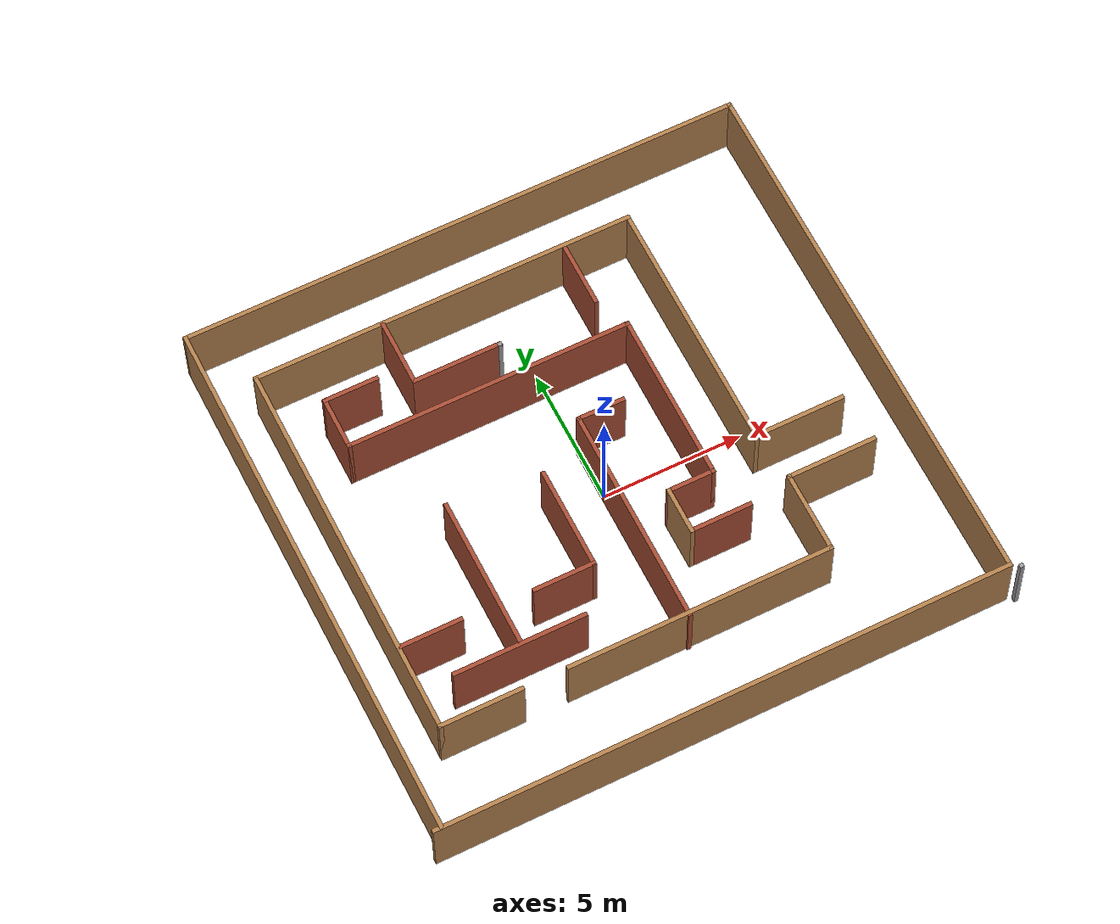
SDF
<?xml version='1.0'?>
<sdf version='1.7'>
  <model name='maze'>
    <pose>-0.132781 0.488445 0 0 -0 0</pose>
    <link name='Wall_101'>
      <collision name='Wall_101_Collision'>
        <geometry>
          <box>
            <size>1.75 0.15 2.5</size>
          </box>
        </geometry>
        <pose>0 0 1.25 0 -0 0</pose>
      </collision>
      <visual name='Wall_101_Visual'>
        <pose>0 0 1.25 0 -0 0</pose>
        <geometry>
          <box>
            <size>1.75 0.15 2.5</size>
          </box>
        </geometry>
        <material>
          <script>
            <uri>file://media/materials/scripts/gazebo.material</uri>
            <name>Gazebo/Bricks</name>
          </script>
          <ambient>1 1 1 1</ambient>
        </material>
        <meta>
          <layer>0</layer>
        </meta>
      </visual>
      <pose>2.31712 -2.33919 0 0 -0 3.14159</pose>
    </link>
    <link name='Wall_102'>
      <collision name='Wall_102_Collision'>
        <geometry>
          <box>
            <size>1.75 0.15 2.5</size>
          </box>
        </geometry>
        <pose>0 0 1.25 0 -0 0</pose>
      </collision>
      <visual name='Wall_102_Visual'>
        <pose>0 0 1.25 0 -0 0</pose>
        <geometry>
          <box>
            <size>1.75 0.15 2.5</size>
          </box>
        </geometry>
        <material>
          <script>
            <uri>file://media/materials/scripts/gazebo.material</uri>
            <name>Gazebo/Wood</name>
          </script>
          <ambient>1 1 1 1</ambient>
        </material>
        <meta>
          <layer>0</layer>
        </meta>
      </visual>
      <pose>1.51712 -3.13919 0 0 -0 -1.5708</pose>
    </link>
    <link name='Wall_103'>
      <collision name='Wall_103_Collision'>
        <geometry>
          <box>
            <size>2.25 0.15 2.5</size>
          </box>
        </geometry>
        <pose>0 0 1.25 0 -0 0</pose>
      </collision>
      <visual name='Wall_103_Visual'>
        <pose>0 0 1.25 0 -0 0</pose>
        <geometry>
          <box>
            <size>2.25 0.15 2.5</size>
          </box>
        </geometry>
        <material>
          <script>
            <uri>file://media/materials/scripts/gazebo.material</uri>
            <name>Gazebo/Bricks</name>
          </script>
          <ambient>1 1 1 1</ambient>
        </material>
        <meta>
          <layer>0</layer>
        </meta>
      </visual>
      <pose>2.56712 -3.93919 0 0 -0 0</pose>
    </link>
    <link name='Wall_105'>
      <collision name='Wall_105_Collision'>
        <geometry>
          <box>
            <size>2.5 0.15 2.5</size>
          </box>
        </geometry>
        <pose>0 0 1.25 0 -0 0</pose>
      </collision>
      <visual name='Wall_105_Visual'>
        <pose>0 0 1.25 0 -0 0</pose>
        <geometry>
          <box>
            <size>2.5 0.15 2.5</size>
          </box>
        </geometry>
        <material>
          <script>
            <uri>file://media/materials/scripts/gazebo.material</uri>
            <name>Gazebo/Bricks</name>
          </script>
          <ambient>1 1 1 1</ambient>
        </material>
        <meta>
          <layer>0</layer>
        </meta>
      </visual>
      <pose>2.56463 6.1754 0 0 -0 -1.5708</pose>
    </link>
    <link name='Wall_108'>
      <collision name='Wall_108_Collision'>
        <geometry>
          <box>
            <size>2 0.15 2.5</size>
          </box>
        </geometry>
        <pose>0 0 1.25 0 -0 0</pose>
      </collision>
      <visual name='Wall_108_Visual'>
        <pose>0 0 1.25 0 -0 0</pose>
        <geometry>
          <box>
            <size>2 0.15 2.5</size>
          </box>
        </geometry>
        <material>
          <script>
            <uri>file://media/materials/scripts/gazebo.material</uri>
            <name>Gazebo/Bricks</name>
          </script>
          <ambient>1 1 1 1</ambient>
        </material>
        <meta>
          <layer>0</layer>
        </meta>
      </visual>
      <pose>-6.05788 5.61081 0 0 -0 0</pose>
    </link>
    <link name='Wall_110'>
      <collision name='Wall_110_Collision'>
        <geometry>
          <box>
            <size>2.5 0.15 2.5</size>
          </box>
        </geometry>
        <pose>0 0 1.25 0 -0 0</pose>
      </collision>
      <visual name='Wall_110_Visual'>
        <pose>0 0 1.25 0 -0 0</pose>
        <geometry>
          <box>
            <size>2.5 0.15 2.5</size>
          </box>
        </geometry>
        <material>
          <script>
            <uri>file://media/materials/scripts/gazebo.material</uri>
            <name>Gazebo/Bricks</name>
          </script>
          <ambient>1 1 1 1</ambient>
        </material>
        <meta>
          <layer>0</layer>
        </meta>
      </visual>
      <pose>-4.07008 6.13494 0 0 -0 -1.5708</pose>
    </link>
    <link name='Wall_111'>
      <collision name='Wall_111_Collision'>
        <geometry>
          <box>
            <size>3.25 0.15 2.5</size>
          </box>
        </geometry>
        <pose>0 0 1.25 0 -0 0</pose>
      </collision>
      <visual name='Wall_111_Visual'>
        <pose>0 0 1.25 0 -0 0</pose>
        <geometry>
          <box>
            <size>3.25 0.15 2.5</size>
          </box>
        </geometry>
        <material>
          <script>
            <uri>file://media/materials/scripts/gazebo.material</uri>
            <name>Gazebo/Bricks</name>
          </script>
          <ambient>1 1 1 1</ambient>
        </material>
        <meta>
          <layer>0</layer>
        </meta>
      </visual>
      <pose>-2.52008 4.95994 0 0 -0 0</pose>
    </link>
    <link name='Wall_112'>
      <collision name='Wall_112_Collision'>
        <geometry>
          <box>
            <size>0.15 0.15 2.5</size>
          </box>
        </geometry>
        <pose>0 0 1.25 0 -0 0</pose>
      </collision>
      <visual name='Wall_112_Visual'>
        <pose>0 0 1.25 0 -0 0</pose>
        <geometry>
          <box>
            <size>0.15 0.15 2.5</size>
          </box>
        </geometry>
        <material>
          <script>
            <uri>file://media/materials/scripts/gazebo.material</uri>
            <name>Gazebo/Grey</name>
          </script>
          <ambient>1 1 1 1</ambient>
        </material>
        <meta>
          <layer>0</layer>
        </meta>
      </visual>
      <pose>-0.970079 4.95994 0 0 -0 0</pose>
    </link>
    <link name='Wall_14'>
      <collision name='Wall_14_Collision'>
        <geometry>
          <box>
            <size>20.5 0.15 2.5</size>
          </box>
        </geometry>
        <pose>0 0 1.25 0 -0 0</pose>
      </collision>
      <visual name='Wall_14_Visual'>
        <pose>0 0 1.25 0 -0 0</pose>
        <geometry>
          <box>
            <size>20.5 0.15 2.5</size>
          </box>
        </geometry>
        <material>
          <script>
            <uri>file://media/materials/scripts/gazebo.material</uri>
            <name>Gazebo/Wood</name>
          </script>
          <ambient>1 1 1 1</ambient>
        </material>
        <meta>
          <layer>0</layer>
        </meta>
      </visual>
      <pose>-0.15378 -9.57856 0 0 -0 0</pose>
    </link>
    <link name='Wall_15'>
      <collision name='Wall_15_Collision'>
        <geometry>
          <box>
            <size>19.5 0.15 2.5</size>
          </box>
        </geometry>
        <pose>0 0 1.25 0 -0 0</pose>
      </collision>
      <visual name='Wall_15_Visual'>
        <pose>0 0 1.25 0 -0 0</pose>
        <geometry>
          <box>
            <size>19.5 0.15 2.5</size>
          </box>
        </geometry>
        <material>
          <script>
            <uri>file://media/materials/scripts/gazebo.material</uri>
            <name>Gazebo/Wood</name>
          </script>
          <ambient>1 1 1 1</ambient>
        </material>
        <meta>
          <layer>0</layer>
        </meta>
      </visual>
      <pose>10.0212 0.096444 0 0 -0 1.5708</pose>
    </link>
    <link name='Wall_16'>
      <collision name='Wall_16_Collision'>
        <geometry>
          <box>
            <size>20.25 0.15 2.5</size>
          </box>
        </geometry>
        <pose>0 0 1.25 0 -0 0</pose>
      </collision>
      <visual name='Wall_16_Visual'>
        <pose>0 0 1.25 0 -0 0</pose>
        <geometry>
          <box>
            <size>20.25 0.15 2.5</size>
          </box>
        </geometry>
        <material>
          <script>
            <uri>file://media/materials/scripts/gazebo.material</uri>
            <name>Gazebo/Wood</name>
          </script>
          <ambient>1 1 1 1</ambient>
        </material>
        <meta>
          <layer>0</layer>
        </meta>
      </visual>
      <pose>-0.02878 9.77144 0 0 -0 3.14159</pose>
    </link>
    <link name='Wall_17'>
      <collision name='Wall_17_Collision'>
        <geometry>
          <box>
            <size>19.5 0.15 2.5</size>
          </box>
        </geometry>
        <pose>0 0 1.25 0 -0 0</pose>
      </collision>
      <visual name='Wall_17_Visual'>
        <pose>0 0 1.25 0 -0 0</pose>
        <geometry>
          <box>
            <size>19.5 0.15 2.5</size>
          </box>
        </geometry>
        <material>
          <script>
            <uri>file://media/materials/scripts/gazebo.material</uri>
            <name>Gazebo/Wood</name>
          </script>
          <ambient>1 1 1 1</ambient>
        </material>
        <meta>
          <layer>0</layer>
        </meta>
      </visual>
      <pose>-10.0788 0.096444 0 0 -0 -1.5708</pose>
    </link>
    <link name='Wall_24'>
      <collision name='Wall_24_Collision'>
        <geometry>
          <box>
            <size>14 0.15 2.5</size>
          </box>
        </geometry>
        <pose>0 0 1.25 0 -0 0</pose>
      </collision>
      <visual name='Wall_24_Visual'>
        <pose>0 0 1.25 0 -0 0</pose>
        <geometry>
          <box>
            <size>14 0.15 2.5</size>
          </box>
        </geometry>
        <material>
          <script>
            <uri>file://media/materials/scripts/gazebo.material</uri>
            <name>Gazebo/Wood</name>
          </script>
          <ambient>1 1 1 1</ambient>
        </material>
        <meta>
          <layer>0</layer>
        </meta>
      </visual>
      <pose>-8.64156 0.446857 0 0 -0 1.5708</pose>
    </link>
    <link name='Wall_25'>
      <collision name='Wall_25_Collision'>
        <geometry>
          <box>
            <size>13.75 0.15 2.5</size>
          </box>
        </geometry>
        <pose>0 0 1.25 0 -0 0</pose>
      </collision>
      <visual name='Wall_25_Visual'>
        <pose>0 0 1.25 0 -0 0</pose>
        <geometry>
          <box>
            <size>13.75 0.15 2.5</size>
          </box>
        </geometry>
        <material>
          <script>
            <uri>file://media/materials/scripts/gazebo.material</uri>
            <name>Gazebo/Wood</name>
          </script>
          <ambient>1 1 1 1</ambient>
        </material>
        <meta>
          <layer>0</layer>
        </meta>
      </visual>
      <pose>-1.84156 7.37186 0 0 -0 0</pose>
    </link>
    <link name='Wall_26'>
      <collision name='Wall_26_Collision'>
        <geometry>
          <box>
            <size>9.34651 0.15 2.5</size>
          </box>
        </geometry>
        <pose>0 0 1.25 0 -0 0</pose>
      </collision>
      <visual name='Wall_26_Visual'>
        <pose>0 0 1.25 0 -0 0</pose>
        <geometry>
          <box>
            <size>9.34651 0.15 2.5</size>
          </box>
        </geometry>
        <material>
          <script>
            <uri>file://media/materials/scripts/gazebo.material</uri>
            <name>Gazebo/Wood</name>
          </script>
          <ambient>1 1 1 1</ambient>
        </material>
        <meta>
          <layer>0</layer>
        </meta>
      </visual>
      <pose>4.95844 2.77365 0 0 -0 -1.5708</pose>
    </link>
    <link name='Wall_27'>
      <collision name='Wall_27_Collision'>
        <geometry>
          <box>
            <size>3.25 0.15 2.5</size>
          </box>
        </geometry>
        <pose>0 0 1.25 0 -0 0</pose>
      </collision>
      <visual name='Wall_27_Visual'>
        <pose>0 0 1.25 0 -0 0</pose>
        <geometry>
          <box>
            <size>3.25 0.15 2.5</size>
          </box>
        </geometry>
        <material>
          <script>
            <uri>file://media/materials/scripts/gazebo.material</uri>
            <name>Gazebo/Wood</name>
          </script>
          <ambient>1 1 1 1</ambient>
        </material>
        <meta>
          <layer>0</layer>
        </meta>
      </visual>
      <pose>6.5489 -1.82457 0 0 -0 0</pose>
    </link>
    <link name='Wall_40'>
      <collision name='Wall_40_Collision'>
        <geometry>
          <box>
            <size>3 0.15 2.5</size>
          </box>
        </geometry>
        <pose>0 0 1.25 0 -0 0</pose>
      </collision>
      <visual name='Wall_40_Visual'>
        <pose>0 0 1.25 0 -0 0</pose>
        <geometry>
          <box>
            <size>3 0.15 2.5</size>
          </box>
        </geometry>
        <material>
          <script>
            <uri>file://media/materials/scripts/gazebo.material</uri>
            <name>Gazebo/Wood</name>
          </script>
          <ambient>1 1 1 1</ambient>
        </material>
        <meta>
          <layer>0</layer>
        </meta>
      </visual>
      <pose>5.20844 -5.05314 0 0 -0 1.5708</pose>
    </link>
    <link name='Wall_41'>
      <collision name='Wall_41_Collision'>
        <geometry>
          <box>
            <size>3.25 0.15 2.5</size>
          </box>
        </geometry>
        <pose>0 0 1.25 0 -0 0</pose>
      </collision>
      <visual name='Wall_41_Visual'>
        <pose>0 0 1.25 0 -0 0</pose>
        <geometry>
          <box>
            <size>3.25 0.15 2.5</size>
          </box>
        </geometry>
        <material>
          <script>
            <uri>file://media/materials/scripts/gazebo.material</uri>
            <name>Gazebo/Wood</name>
          </script>
          <ambient>1 1 1 1</ambient>
        </material>
        <meta>
          <layer>0</layer>
        </meta>
      </visual>
      <pose>6.75844 -3.62814 0 0 -0 0</pose>
    </link>
    <link name='Wall_45'>
      <collision name='Wall_45_Collision'>
        <geometry>
          <box>
            <size>3 0.15 2.5</size>
          </box>
        </geometry>
        <pose>0 0 1.25 0 -0 0</pose>
      </collision>
      <visual name='Wall_45_Visual'>
        <pose>0 0 1.25 0 -0 0</pose>
        <geometry>
          <box>
            <size>3 0.15 2.5</size>
          </box>
        </geometry>
        <material>
          <script>
            <uri>file://media/materials/scripts/gazebo.material</uri>
            <name>Gazebo/Wood</name>
          </script>
          <ambient>1 1 1 1</ambient>
        </material>
        <meta>
          <layer>0</layer>
        </meta>
      </visual>
      <pose>-7.21656 -6.47814 0 0 -0 0</pose>
    </link>
    <link name='Wall_50'>
      <collision name='Wall_50_Collision'>
        <geometry>
          <box>
            <size>9.5 0.15 2.5</size>
          </box>
        </geometry>
        <pose>0 0 1.25 0 -0 0</pose>
      </collision>
      <visual name='Wall_50_Visual'>
        <pose>0 0 1.25 0 -0 0</pose>
        <geometry>
          <box>
            <size>9.5 0.15 2.5</size>
          </box>
        </geometry>
        <material>
          <script>
            <uri>file://media/materials/scripts/gazebo.material</uri>
            <name>Gazebo/Wood</name>
          </script>
          <ambient>1 1 1 1</ambient>
        </material>
        <meta>
          <layer>0</layer>
        </meta>
      </visual>
      <pose>0.53344 -6.47814 0 0 -0 3.14159</pose>
    </link>
    <link name='Wall_52'>
      <collision name='Wall_52_Collision'>
        <geometry>
          <box>
            <size>4.75 0.15 2.5</size>
          </box>
        </geometry>
        <pose>0 0 1.25 0 -0 0</pose>
      </collision>
      <visual name='Wall_52_Visual'>
        <pose>0 0 1.25 0 -0 0</pose>
        <geometry>
          <box>
            <size>4.75 0.15 2.5</size>
          </box>
        </geometry>
        <material>
          <script>
            <uri>file://media/materials/scripts/gazebo.material</uri>
            <name>Gazebo/Bricks</name>
          </script>
          <ambient>1 1 1 1</ambient>
        </material>
        <meta>
          <layer>0</layer>
        </meta>
      </visual>
      <pose>-5.16835 -5.06947 0 0 -0 0</pose>
    </link>
    <link name='Wall_54'>
      <collision name='Wall_54_Collision'>
        <geometry>
          <box>
            <size>2.25 0.15 2.5</size>
          </box>
        </geometry>
        <pose>0 0 1.25 0 -0 0</pose>
      </collision>
      <visual name='Wall_54_Visual'>
        <pose>0 0 1.25 0 -0 0</pose>
        <geometry>
          <box>
            <size>2.25 0.15 2.5</size>
          </box>
        </geometry>
        <material>
          <script>
            <uri>file://media/materials/scripts/gazebo.material</uri>
            <name>Gazebo/Bricks</name>
          </script>
          <ambient>1 1 1 1</ambient>
        </material>
        <meta>
          <layer>0</layer>
        </meta>
      </visual>
      <pose>-7.51065 -3.45124 0 0 -0 0</pose>
    </link>
    <link name='Wall_62'>
      <collision name='Wall_62_Collision'>
        <geometry>
          <box>
            <size>0.16 0.15 2.5</size>
          </box>
        </geometry>
        <pose>0 0 1.25 0 -0 0</pose>
      </collision>
      <visual name='Wall_62_Visual'>
        <pose>0 0 1.25 0 -0 0</pose>
        <geometry>
          <box>
            <size>0.16 0.15 2.5</size>
          </box>
        </geometry>
        <material>
          <script>
            <uri>file://media/materials/scripts/gazebo.material</uri>
            <name>Gazebo/Grey</name>
          </script>
          <ambient>1 1 1 1</ambient>
        </material>
        <meta>
          <layer>0</layer>
        </meta>
      </visual>
      <pose>-5.11693 -4.9481 0 0 -0 0</pose>
    </link>
    <link name='Wall_63'>
      <collision name='Wall_63_Collision'>
        <geometry>
          <box>
            <size>5.5 0.15 2.5</size>
          </box>
        </geometry>
        <pose>0 0 1.25 0 -0 0</pose>
      </collision>
      <visual name='Wall_63_Visual'>
        <pose>0 0 1.25 0 -0 0</pose>
        <geometry>
          <box>
            <size>5.5 0.15 2.5</size>
          </box>
        </geometry>
        <material>
          <script>
            <uri>file://media/materials/scripts/gazebo.material</uri>
            <name>Gazebo/Bricks</name>
          </script>
          <ambient>1 1 1 1</ambient>
        </material>
        <meta>
          <layer>0</layer>
        </meta>
      </visual>
      <pose>-5.11192 -2.2731 0 0 -0 1.5708</pose>
    </link>
    <link name='Wall_7'>
      <collision name='Wall_7_Collision'>
        <geometry>
          <box>
            <size>0.15 0.15 2.5</size>
          </box>
        </geometry>
        <pose>0 0 1.25 0 -0 0</pose>
      </collision>
      <visual name='Wall_7_Visual'>
        <pose>0 0 1.25 0 -0 0</pose>
        <geometry>
          <box>
            <size>0.15 0.15 2.5</size>
          </box>
        </geometry>
        <material>
          <script>
            <uri>file://media/materials/scripts/gazebo.material</uri>
            <name>Gazebo/Grey</name>
          </script>
          <ambient>1 1 1 1</ambient>
        </material>
        <meta>
          <layer>0</layer>
        </meta>
      </visual>
      <pose>10.3288 -9.77144 0 0 -0 0</pose>
    </link>
    <link name='Wall_73'>
      <collision name='Wall_73_Collision'>
        <geometry>
          <box>
            <size>2.25 0.15 2.5</size>
          </box>
        </geometry>
        <pose>0 0 1.25 0 -0 0</pose>
      </collision>
      <visual name='Wall_73_Visual'>
        <pose>0 0 1.25 0 -0 0</pose>
        <geometry>
          <box>
            <size>2.25 0.15 2.5</size>
          </box>
        </geometry>
        <material>
          <script>
            <uri>file://media/materials/scripts/gazebo.material</uri>
            <name>Gazebo/Bricks</name>
          </script>
          <ambient>1 1 1 1</ambient>
        </material>
        <meta>
          <layer>0</layer>
        </meta>
      </visual>
      <pose>-2.85826 -3.57261 0 0 -0 0</pose>
    </link>
    <link name='Wall_74'>
      <collision name='Wall_74_Collision'>
        <geometry>
          <box>
            <size>3.75 0.15 2.5</size>
          </box>
        </geometry>
        <pose>0 0 1.25 0 -0 0</pose>
      </collision>
      <visual name='Wall_74_Visual'>
        <pose>0 0 1.25 0 -0 0</pose>
        <geometry>
          <box>
            <size>3.75 0.15 2.5</size>
          </box>
        </geometry>
        <material>
          <script>
            <uri>file://media/materials/scripts/gazebo.material</uri>
            <name>Gazebo/Bricks</name>
          </script>
          <ambient>1 1 1 1</ambient>
        </material>
        <meta>
          <layer>0</layer>
        </meta>
      </visual>
      <pose>-1.80826 -1.77261 0 0 -0 1.5708</pose>
    </link>
    <link name='Wall_8'>
      <collision name='Wall_8_Collision'>
        <geometry>
          <box>
            <size>0.15 0.15 2.5</size>
          </box>
        </geometry>
        <pose>0 0 1.25 0 -0 0</pose>
      </collision>
      <visual name='Wall_8_Visual'>
        <pose>0 0 1.25 0 -0 0</pose>
        <geometry>
          <box>
            <size>0.15 0.15 2.5</size>
          </box>
        </geometry>
        <material>
          <script>
            <uri>file://media/materials/scripts/gazebo.material</uri>
            <name>Gazebo/Grey</name>
          </script>
          <ambient>1 1 1 1</ambient>
        </material>
        <meta>
          <layer>0</layer>
        </meta>
      </visual>
      <pose>10.3288 -9.77144 0 0 -0 0</pose>
    </link>
    <link name='Wall_81'>
      <collision name='Wall_81_Collision'>
        <geometry>
          <box>
            <size>8 0.15 2.5</size>
          </box>
        </geometry>
        <pose>0 0 1.25 0 -0 0</pose>
      </collision>
      <visual name='Wall_81_Visual'>
        <pose>0 0 1.25 0 -0 0</pose>
        <geometry>
          <box>
            <size>8 0.15 2.5</size>
          </box>
        </geometry>
        <material>
          <script>
            <uri>file://media/materials/scripts/gazebo.material</uri>
            <name>Gazebo/Bricks</name>
          </script>
          <ambient>1 1 1 1</ambient>
        </material>
        <meta>
          <layer>0</layer>
        </meta>
      </visual>
      <pose>0.096845 -2.61756 0 0 -0 1.5708</pose>
    </link>
    <link name='Wall_83'>
      <collision name='Wall_83_Collision'>
        <geometry>
          <box>
            <size>1.75 0.15 2.5</size>
          </box>
        </geometry>
        <pose>0 0 1.25 0 -0 0</pose>
      </collision>
      <visual name='Wall_83_Visual'>
        <pose>0 0 1.25 0 -0 0</pose>
        <geometry>
          <box>
            <size>1.75 0.15 2.5</size>
          </box>
        </geometry>
        <material>
          <script>
            <uri>file://media/materials/scripts/gazebo.material</uri>
            <name>Gazebo/Bricks</name>
          </script>
          <ambient>1 1 1 1</ambient>
        </material>
        <meta>
          <layer>0</layer>
        </meta>
      </visual>
      <pose>0.896845 1.30744 0 0 -0 0</pose>
    </link>
    <link name='Wall_94'>
      <collision name='Wall_94_Collision'>
        <geometry>
          <box>
            <size>2 0.15 2.5</size>
          </box>
        </geometry>
        <pose>0 0 1.25 0 -0 0</pose>
      </collision>
      <visual name='Wall_94_Visual'>
        <pose>0 0 1.25 0 -0 0</pose>
        <geometry>
          <box>
            <size>2 0.15 2.5</size>
          </box>
        </geometry>
        <material>
          <script>
            <uri>file://media/materials/scripts/gazebo.material</uri>
            <name>Gazebo/Bricks</name>
          </script>
          <ambient>1 1 1 1</ambient>
        </material>
        <meta>
          <layer>0</layer>
        </meta>
      </visual>
      <pose>-6.98288 4.68581 0 0 -0 -1.5708</pose>
    </link>
    <link name='Wall_97'>
      <collision name='Wall_97_Collision'>
        <geometry>
          <box>
            <size>10.25 0.15 2.5</size>
          </box>
        </geometry>
        <pose>0 0 1.25 0 -0 0</pose>
      </collision>
      <visual name='Wall_97_Visual'>
        <pose>0 0 1.25 0 -0 0</pose>
        <geometry>
          <box>
            <size>10.25 0.15 2.5</size>
          </box>
        </geometry>
        <material>
          <script>
            <uri>file://media/materials/scripts/gazebo.material</uri>
            <name>Gazebo/Bricks</name>
          </script>
          <ambient>1 1 1 1</ambient>
        </material>
        <meta>
          <layer>0</layer>
        </meta>
      </visual>
      <pose>-1.93288 3.76081 0 0 -0 0</pose>
    </link>
    <link name='Wall_98'>
      <collision name='Wall_98_Collision'>
        <geometry>
          <box>
            <size>6.25 0.15 2.5</size>
          </box>
        </geometry>
        <pose>0 0 1.25 0 -0 0</pose>
      </collision>
      <visual name='Wall_98_Visual'>
        <pose>0 0 1.25 0 -0 0</pose>
        <geometry>
          <box>
            <size>6.25 0.15 2.5</size>
          </box>
        </geometry>
        <material>
          <script>
            <uri>file://media/materials/scripts/gazebo.material</uri>
            <name>Gazebo/Bricks</name>
          </script>
          <ambient>1 1 1 1</ambient>
        </material>
        <meta>
          <layer>0</layer>
        </meta>
      </visual>
      <pose>3.11712 0.710808 0 0 -0 -1.5708</pose>
    </link>
    <static>1</static>
  </model>
</sdf>
